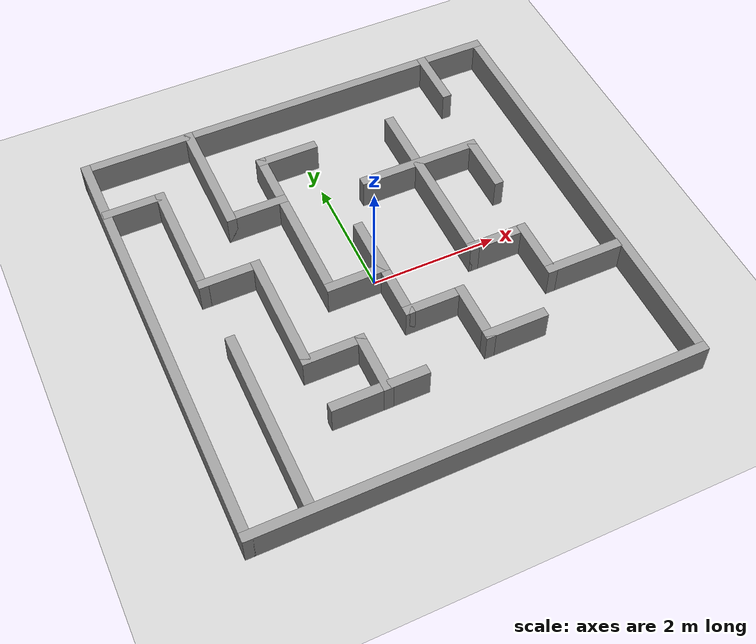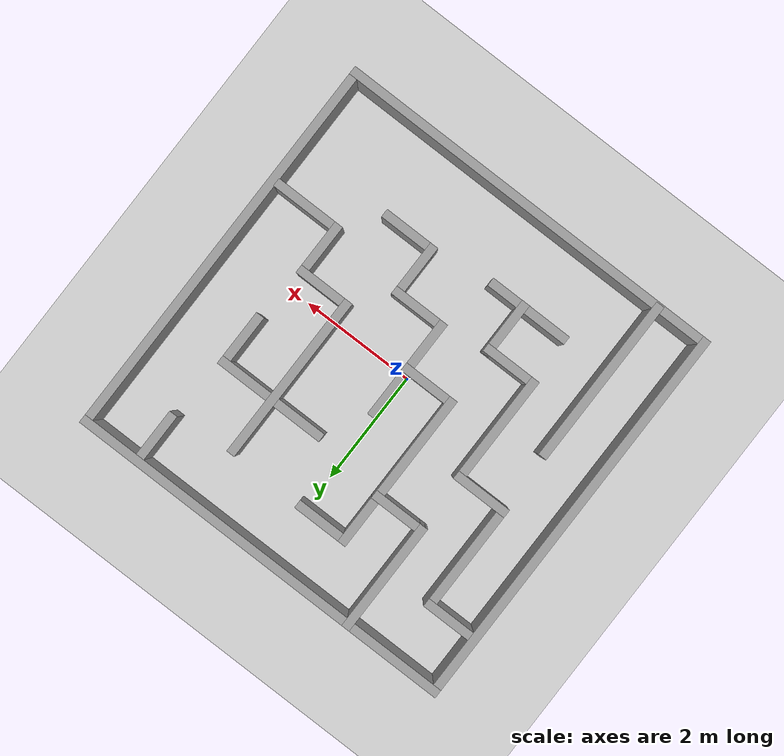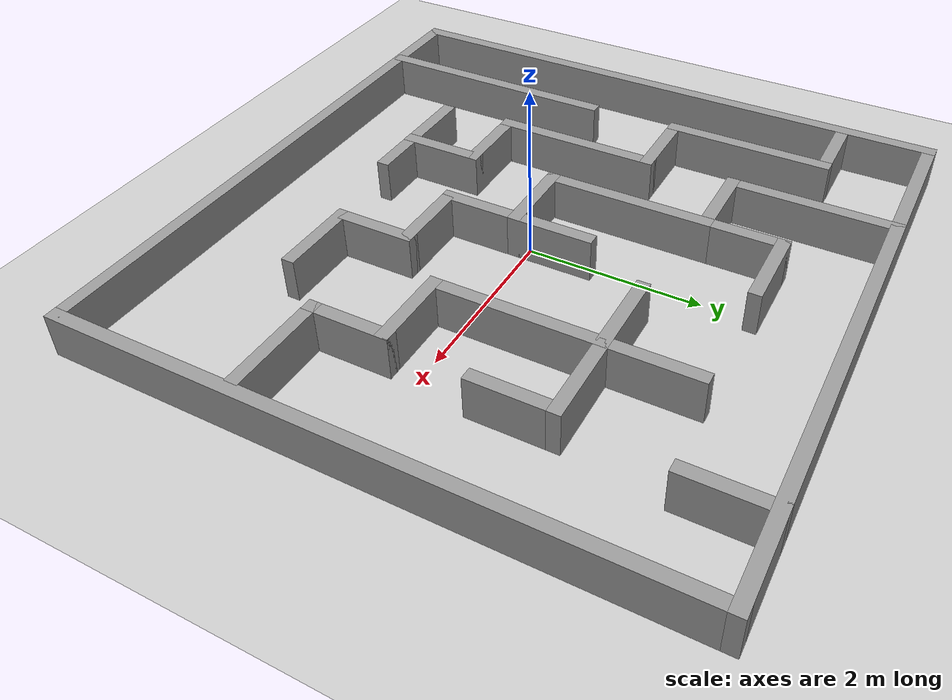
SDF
<sdf version="1.7">
 <world name="default">
  <light name="sun" type="directional">
   <pose>0 0 10 0 -0 0</pose>
   <diffuse>0.8 0.8 0.8 1</diffuse>
   <specular>0.2 0.2 0.2 1</specular>
   <attenuation>
    <range>1000</range>
    <constant>0.9</constant>
    <linear>0.01</linear>
    <quadratic>0.001</quadratic>
   </attenuation>
   <direction>-0.5 0.1 -0.9</direction>
   <spot><inner_angle>0</inner_angle><outer_angle>0</outer_angle><falloff>0</falloff></spot>
  </light>
  <model name="ground_plane">
   <static>1</static>
   <link name="link">
    <collision name="collision">
     <geometry><plane><normal>0 0 1</normal><size>100 100</size></plane></geometry>
     <surface>
      <contact><collide_bitmask>65535</collide_bitmask></contact>
      <friction><ode><mu>100</mu><mu2>50</mu2></ode></friction>
     </surface>
    </collision>
    <visual name="visual">
     <cast_shadows>0</cast_shadows>
     <geometry><plane><normal>0 0 1</normal><size>100 100</size></plane></geometry>
     <material>
      <script><uri>file://media/materials/scripts/gazebo.material</uri><name>Gazebo/Grey</name></script>
     </material>
    </visual>
   </link>
  </model>
  <gravity>0 0 -9.8</gravity>
  <magnetic_field>6e-06 2.3e-05 -4.2e-05</magnetic_field>
  <atmosphere type="adiabatic"/>
  <physics type="ode">
   <max_step_size>0.001</max_step_size>
   <real_time_factor>1</real_time_factor>
   <real_time_update_rate>1000</real_time_update_rate>
  </physics>
  <scene><ambient>0.4 0.4 0.4 1</ambient><background>0.7 0.7 0.7 1</background><shadows>1</shadows></scene>
  <spherical_coordinates>
   <surface_model>EARTH_WGS84</surface_model>
   <latitude_deg>0</latitude_deg>
   <longitude_deg>0</longitude_deg>
   <elevation>0</elevation>
   <heading_deg>0</heading_deg>
  </spherical_coordinates>
  <model name="labyrinth">
   <pose>0.117069 0.145921 0 0 -0 0</pose>
   <link name="Wall_10">
    <collision name="Wall_10_Collision">
     <geometry><box><size>1 0.15 0.5</size></box></geometry>
     <pose>0 0 0.25 0 -0 0</pose>
    </collision>
    <visual name="Wall_10_Visual">
     <pose>0 0 0.25 0 -0 0</pose>
     <geometry><box><size>1 0.15 0.5</size></box></geometry>
     <material>
      <script><uri>file://media/materials/scripts/gazebo.material</uri><name>Gazebo/Grey</name></script>
      <ambient>1 1 1 1</ambient>
     </material>
     <meta><layer>0</layer></meta>
    </visual>
    <pose>-2.12873 0.556014 0 0 -0 0</pose>
   </link>
   <link name="Wall_11">
    <collision name="Wall_11_Collision">
     <geometry><box><size>2 0.15 0.5</size></box></geometry>
     <pose>0 0 0.25 0 -0 0</pose>
    </collision>
    <visual name="Wall_11_Visual">
     <pose>0 0 0.25 0 -0 0</pose>
     <geometry><box><size>2 0.15 0.5</size></box></geometry>
     <material>
      <script><uri>file://media/materials/scripts/gazebo.material</uri><name>Gazebo/Grey</name></script>
      <ambient>1 1 1 1</ambient>
     </material>
     <meta><layer>0</layer></meta>
    </visual>
    <pose>-1.70373 -0.368986 0 0 -0 -1.5708</pose>
   </link>
   <link name="Wall_12">
    <collision name="Wall_12_Collision">
     <geometry><box><size>1 0.15 0.5</size></box></geometry>
     <pose>0 0 0.25 0 -0 0</pose>
    </collision>
    <visual name="Wall_12_Visual">
     <pose>0 0 0.25 0 -0 0</pose>
     <geometry><box><size>1 0.15 0.5</size></box></geometry>
     <material>
      <script><uri>file://media/materials/scripts/gazebo.material</uri><name>Gazebo/Grey</name></script>
      <ambient>1 1 1 1</ambient>
     </material>
     <meta><layer>0</layer></meta>
    </visual>
    <pose>-1.27873 -1.29399 0 0 -0 0</pose>
   </link>
   <link name="Wall_13">
    <collision name="Wall_13_Collision">
     <geometry><box><size>1 0.15 0.5</size></box></geometry>
     <pose>0 0 0.25 0 -0 0</pose>
    </collision>
    <visual name="Wall_13_Visual">
     <pose>0 0 0.25 0 -0 0</pose>
     <geometry><box><size>1 0.15 0.5</size></box></geometry>
     <material>
      <script><uri>file://media/materials/scripts/gazebo.material</uri><name>Gazebo/Grey</name></script>
      <ambient>1 1 1 1</ambient>
     </material>
     <meta><layer>0</layer></meta>
    </visual>
    <pose>-0.853729 -1.71899 0 0 -0 -1.5708</pose>
   </link>
   <link name="Wall_15">
    <collision name="Wall_15_Collision">
     <geometry><box><size>3 0.15 0.5</size></box></geometry>
     <pose>0 0 0.25 0 -0 0</pose>
    </collision>
    <visual name="Wall_15_Visual">
     <pose>0 0 0.25 0 -0 0</pose>
     <geometry><box><size>3 0.15 0.5</size></box></geometry>
     <material>
      <script><uri>file://media/materials/scripts/gazebo.material</uri><name>Gazebo/Grey</name></script>
      <ambient>1 1 1 1</ambient>
     </material>
     <meta><layer>0</layer></meta>
    </visual>
    <pose>-2.52162 -1.97873 0 0 -0 1.5708</pose>
   </link>
   <link name="Wall_17">
    <collision name="Wall_17_Collision">
     <geometry><box><size>2 0.15 0.5</size></box></geometry>
     <pose>0 0 0.25 0 -0 0</pose>
    </collision>
    <visual name="Wall_17_Visual">
     <pose>0 0 0.25 0 -0 0</pose>
     <geometry><box><size>2 0.15 0.5</size></box></geometry>
     <material>
      <script><uri>file://media/materials/scripts/gazebo.material</uri><name>Gazebo/Grey</name></script>
      <ambient>1 1 1 1</ambient>
     </material>
     <meta><layer>0</layer></meta>
    </visual>
    <pose>-1.73077 2.5 0 0 -0 -1.5708</pose>
   </link>
   <link name="Wall_18">
    <collision name="Wall_18_Collision">
     <geometry><box><size>1 0.15 0.5</size></box></geometry>
     <pose>0 0 0.25 0 -0 0</pose>
    </collision>
    <visual name="Wall_18_Visual">
     <pose>0 0 0.25 0 -0 0</pose>
     <geometry><box><size>1 0.15 0.5</size></box></geometry>
     <material>
      <script><uri>file://media/materials/scripts/gazebo.material</uri><name>Gazebo/Grey</name></script>
      <ambient>1 1 1 1</ambient>
     </material>
     <meta><layer>0</layer></meta>
    </visual>
    <pose>-1.30577 1.575 0 0 -0 0</pose>
   </link>
   <link name="Wall_19">
    <collision name="Wall_19_Collision">
     <geometry><box><size>1 0.15 0.5</size></box></geometry>
     <pose>0 0 0.25 0 -0 0</pose>
    </collision>
    <visual name="Wall_19_Visual">
     <pose>0 0 0.25 0 -0 0</pose>
     <geometry><box><size>1 0.15 0.5</size></box></geometry>
     <material>
      <script><uri>file://media/materials/scripts/gazebo.material</uri><name>Gazebo/Grey</name></script>
      <ambient>1 1 1 1</ambient>
     </material>
     <meta><layer>0</layer></meta>
    </visual>
    <pose>-0.880766 2 0 0 -0 1.5708</pose>
   </link>
   <link name="Wall_20">
    <collision name="Wall_20_Collision">
     <geometry><box><size>1 0.15 0.5</size></box></geometry>
     <pose>0 0 0.25 0 -0 0</pose>
    </collision>
    <visual name="Wall_20_Visual">
     <pose>0 0 0.25 0 -0 0</pose>
     <geometry><box><size>1 0.15 0.5</size></box></geometry>
     <material>
      <script><uri>file://media/materials/scripts/gazebo.material</uri><name>Gazebo/Grey</name></script>
      <ambient>1 1 1 1</ambient>
     </material>
     <meta><layer>0</layer></meta>
    </visual>
    <pose>-0.455766 2.425 0 0 -0 0</pose>
   </link>
   <link name="Wall_22">
    <collision name="Wall_22_Collision">
     <geometry><box><size>2 0.15 0.5</size></box></geometry>
     <pose>0 0 0.25 0 -0 0</pose>
    </collision>
    <visual name="Wall_22_Visual">
     <pose>0 0 0.25 0 -0 0</pose>
     <geometry><box><size>2 0.15 0.5</size></box></geometry>
     <material>
      <script><uri>file://media/materials/scripts/gazebo.material</uri><name>Gazebo/Grey</name></script>
      <ambient>1 1 1 1</ambient>
     </material>
     <meta><layer>0</layer></meta>
    </visual>
    <pose>-0.880766 0.65 0 0 -0 -1.5708</pose>
   </link>
   <link name="Wall_23">
    <collision name="Wall_23_Collision">
     <geometry><box><size>1 0.15 0.5</size></box></geometry>
     <pose>0 0 0.25 0 -0 0</pose>
    </collision>
    <visual name="Wall_23_Visual">
     <pose>0 0 0.25 0 -0 0</pose>
     <geometry><box><size>1 0.15 0.5</size></box></geometry>
     <material>
      <script><uri>file://media/materials/scripts/gazebo.material</uri><name>Gazebo/Grey</name></script>
      <ambient>1 1 1 1</ambient>
     </material>
     <meta><layer>0</layer></meta>
    </visual>
    <pose>-0.455766 -0.275 0 0 -0 0</pose>
   </link>
   <link name="Wall_24">
    <collision name="Wall_24_Collision">
     <geometry><box><size>1 0.15 0.5</size></box></geometry>
     <pose>0 0 0.25 0 -0 0</pose>
    </collision>
    <visual name="Wall_24_Visual">
     <pose>0 0 0.25 0 -0 0</pose>
     <geometry><box><size>1 0.15 0.5</size></box></geometry>
     <material>
      <script><uri>file://media/materials/scripts/gazebo.material</uri><name>Gazebo/Grey</name></script>
      <ambient>1 1 1 1</ambient>
     </material>
     <meta><layer>0</layer></meta>
    </visual>
    <pose>-0.030766 0.15 0 0 -0 1.5708</pose>
   </link>
   <link name="Wall_26">
    <collision name="Wall_26_Collision">
     <geometry><box><size>1 0.15 0.5</size></box></geometry>
     <pose>0 0 0.25 0 -0 0</pose>
    </collision>
    <visual name="Wall_26_Visual">
     <pose>0 0 0.25 0 -0 0</pose>
     <geometry><box><size>1 0.15 0.5</size></box></geometry>
     <material>
      <script><uri>file://media/materials/scripts/gazebo.material</uri><name>Gazebo/Grey</name></script>
      <ambient>1 1 1 1</ambient>
     </material>
     <meta><layer>0</layer></meta>
    </visual>
    <pose>-0.030766 -0.7 0 0 -0 -1.5708</pose>
   </link>
   <link name="Wall_29">
    <collision name="Wall_29_Collision">
     <geometry><box><size>1 0.15 0.5</size></box></geometry>
     <pose>0 0 0.25 0 -0 0</pose>
    </collision>
    <visual name="Wall_29_Visual">
     <pose>0 0 0.25 0 -0 0</pose>
     <geometry><box><size>1 0.15 0.5</size></box></geometry>
     <material>
      <script><uri>file://media/materials/scripts/gazebo.material</uri><name>Gazebo/Grey</name></script>
      <ambient>1 1 1 1</ambient>
     </material>
     <meta><layer>0</layer></meta>
    </visual>
    <pose>0.394234 -1.125 0 0 -0 0</pose>
   </link>
   <link name="Wall_3">
    <collision name="Wall_3_Collision">
     <geometry><box><size>7 0.15 0.5</size></box></geometry>
     <pose>0 0 0.25 0 -0 0</pose>
    </collision>
    <visual name="Wall_3_Visual">
     <pose>0 0 0.25 0 -0 0</pose>
     <geometry><box><size>7 0.15 0.5</size></box></geometry>
     <material>
      <script><uri>file://media/materials/scripts/gazebo.material</uri><name>Gazebo/Grey</name></script>
      <ambient>1 1 1 1</ambient>
     </material>
     <meta><layer>0</layer></meta>
    </visual>
    <pose>-0 3.425 0 0 -0 3.14159</pose>
   </link>
   <link name="Wall_30">
    <collision name="Wall_30_Collision">
     <geometry><box><size>1 0.15 0.5</size></box></geometry>
     <pose>0 0 0.25 0 -0 0</pose>
    </collision>
    <visual name="Wall_30_Visual">
     <pose>0 0 0.25 0 -0 0</pose>
     <geometry><box><size>1 0.15 0.5</size></box></geometry>
     <material>
      <script><uri>file://media/materials/scripts/gazebo.material</uri><name>Gazebo/Grey</name></script>
      <ambient>1 1 1 1</ambient>
     </material>
     <meta><layer>0</layer></meta>
    </visual>
    <pose>0.819234 -1.55 0 0 -0 -1.5708</pose>
   </link>
   <link name="Wall_32">
    <collision name="Wall_32_Collision">
     <geometry><box><size>1 0.15 0.5</size></box></geometry>
     <pose>0 0 0.25 0 -0 0</pose>
    </collision>
    <visual name="Wall_32_Visual">
     <pose>0 0 0.25 0 -0 0</pose>
     <geometry><box><size>1 0.15 0.5</size></box></geometry>
     <material>
      <script><uri>file://media/materials/scripts/gazebo.material</uri><name>Gazebo/Grey</name></script>
      <ambient>1 1 1 1</ambient>
     </material>
     <meta><layer>0</layer></meta>
    </visual>
    <pose>2.42122 3 0 0 -0 -1.5708</pose>
   </link>
   <link name="Wall_38">
    <collision name="Wall_38_Collision">
     <geometry><box><size>3 0.15 0.5</size></box></geometry>
     <pose>0 0 0.25 0 -0 0</pose>
    </collision>
    <visual name="Wall_38_Visual">
     <pose>0 0 0.25 0 -0 0</pose>
     <geometry><box><size>3 0.15 0.5</size></box></geometry>
     <material>
      <script><uri>file://media/materials/scripts/gazebo.material</uri><name>Gazebo/Grey</name></script>
      <ambient>1 1 1 1</ambient>
     </material>
     <meta><layer>0</layer></meta>
    </visual>
    <pose>1.3414 0.950596 0 0 -0 -1.5708</pose>
   </link>
   <link name="Wall_39">
    <collision name="Wall_39_Collision">
     <geometry><box><size>1 0.15 0.5</size></box></geometry>
     <pose>0 0 0.25 0 -0 0</pose>
    </collision>
    <visual name="Wall_39_Visual">
     <pose>0 0 0.25 0 -0 0</pose>
     <geometry><box><size>1 0.15 0.5</size></box></geometry>
     <material>
      <script><uri>file://media/materials/scripts/gazebo.material</uri><name>Gazebo/Grey</name></script>
      <ambient>1 1 1 1</ambient>
     </material>
     <meta><layer>0</layer></meta>
    </visual>
    <pose>1.7664 -0.474404 0 0 -0 0</pose>
   </link>
   <link name="Wall_4">
    <collision name="Wall_4_Collision">
     <geometry><box><size>7 0.15 0.5</size></box></geometry>
     <pose>0 0 0.25 0 -0 0</pose>
    </collision>
    <visual name="Wall_4_Visual">
     <pose>0 0 0.25 0 -0 0</pose>
     <geometry><box><size>7 0.15 0.5</size></box></geometry>
     <material>
      <script><uri>file://media/materials/scripts/gazebo.material</uri><name>Gazebo/Grey</name></script>
      <ambient>1 1 1 1</ambient>
     </material>
     <meta><layer>0</layer></meta>
    </visual>
    <pose>-3.425 0 0 0 -0 -1.5708</pose>
   </link>
   <link name="Wall_40">
    <collision name="Wall_40_Collision">
     <geometry><box><size>1 0.15 0.5</size></box></geometry>
     <pose>0 0 0.25 0 -0 0</pose>
    </collision>
    <visual name="Wall_40_Visual">
     <pose>0 0 0.25 0 -0 0</pose>
     <geometry><box><size>1 0.15 0.5</size></box></geometry>
     <material>
      <script><uri>file://media/materials/scripts/gazebo.material</uri><name>Gazebo/Grey</name></script>
      <ambient>1 1 1 1</ambient>
     </material>
     <meta><layer>0</layer></meta>
    </visual>
    <pose>2.1914 -0.899404 0 0 -0 -1.5708</pose>
   </link>
   <link name="Wall_41">
    <collision name="Wall_41_Collision">
     <geometry><box><size>1.25 0.15 0.5</size></box></geometry>
     <pose>0 0 0.25 0 -0 0</pose>
    </collision>
    <visual name="Wall_41_Visual">
     <pose>0 0 0.25 0 -0 0</pose>
     <geometry><box><size>1.25 0.15 0.5</size></box></geometry>
     <material>
      <script><uri>file://media/materials/scripts/gazebo.material</uri><name>Gazebo/Grey</name></script>
      <ambient>1 1 1 1</ambient>
     </material>
     <meta><layer>0</layer></meta>
    </visual>
    <pose>2.7414 -1.3244 0 0 -0 0</pose>
   </link>
   <link name="Wall_43">
    <collision name="Wall_43_Collision">
     <geometry><box><size>2 0.15 0.5</size></box></geometry>
     <pose>0 0 0.25 0 -0 0</pose>
    </collision>
    <visual name="Wall_43_Visual">
     <pose>0 0 0.25 0 -0 0</pose>
     <geometry><box><size>2 0.15 0.5</size></box></geometry>
     <material>
      <script><uri>file://media/materials/scripts/gazebo.material</uri><name>Gazebo/Grey</name></script>
      <ambient>1 1 1 1</ambient>
     </material>
     <meta><layer>0</layer></meta>
    </visual>
    <pose>1.36909 1.38703 0 0 -0 0</pose>
   </link>
   <link name="Wall_44">
    <collision name="Wall_44_Collision">
     <geometry><box><size>1 0.15 0.5</size></box></geometry>
     <pose>0 0 0.25 0 -0 0</pose>
    </collision>
    <visual name="Wall_44_Visual">
     <pose>0 0 0.25 0 -0 0</pose>
     <geometry><box><size>1 0.15 0.5</size></box></geometry>
     <material>
      <script><uri>file://media/materials/scripts/gazebo.material</uri><name>Gazebo/Grey</name></script>
      <ambient>1 1 1 1</ambient>
     </material>
     <meta><layer>0</layer></meta>
    </visual>
    <pose>2.29408 0.962028 0 0 -0 -1.5708</pose>
   </link>
   <link name="Wall_46">
    <collision name="Wall_46_Collision">
     <geometry><box><size>1.5 0.15 0.5</size></box></geometry>
     <pose>0 0 0.25 0 -0 0</pose>
    </collision>
    <visual name="Wall_46_Visual">
     <pose>0 0 0.25 0 -0 0</pose>
     <geometry><box><size>1.5 0.15 0.5</size></box></geometry>
     <material>
      <script><uri>file://media/materials/scripts/gazebo.material</uri><name>Gazebo/Grey</name></script>
      <ambient>1 1 1 1</ambient>
     </material>
     <meta><layer>0</layer></meta>
    </visual>
    <pose>-0.964514 -2.1414 0 0 -0 0</pose>
   </link>
   <link name="Wall_49">
    <collision name="Wall_49_Collision">
     <geometry><box><size>1 0.15 0.5</size></box></geometry>
     <pose>0 0 0.25 0 -0 0</pose>
    </collision>
    <visual name="Wall_49_Visual">
     <pose>0 0 0.25 0 -0 0</pose>
     <geometry><box><size>1 0.15 0.5</size></box></geometry>
     <material>
      <script><uri>file://media/materials/scripts/gazebo.material</uri><name>Gazebo/Grey</name></script>
      <ambient>1 1 1 1</ambient>
     </material>
     <meta><layer>0</layer></meta>
    </visual>
    <pose>1.24423 -1.975 0 0 -0 0</pose>
   </link>
   <link name="Wall_5">
    <collision name="Wall_5_Collision">
     <geometry><box><size>7 0.15 0.5</size></box></geometry>
     <pose>0 0 0.25 0 -0 0</pose>
    </collision>
    <visual name="Wall_5_Visual">
     <pose>0 0 0.25 0 -0 0</pose>
     <geometry><box><size>7 0.15 0.5</size></box></geometry>
     <material>
      <script><uri>file://media/materials/scripts/gazebo.material</uri><name>Gazebo/Grey</name></script>
      <ambient>1 1 1 1</ambient>
     </material>
     <meta><layer>0</layer></meta>
    </visual>
    <pose>-0 -3.425 0 0 -0 0</pose>
   </link>
   <link name="Wall_6">
    <collision name="Wall_6_Collision">
     <geometry><box><size>7 0.15 0.5</size></box></geometry>
     <pose>0 0 0.25 0 -0 0</pose>
    </collision>
    <visual name="Wall_6_Visual">
     <pose>0 0 0.25 0 -0 0</pose>
     <geometry><box><size>7 0.15 0.5</size></box></geometry>
     <material>
      <script><uri>file://media/materials/scripts/gazebo.material</uri><name>Gazebo/Grey</name></script>
      <ambient>1 1 1 1</ambient>
     </material>
     <meta><layer>0</layer></meta>
    </visual>
    <pose>3.425 0 0 0 -0 1.5708</pose>
   </link>
   <link name="Wall_8">
    <collision name="Wall_8_Collision">
     <geometry><box><size>1 0.15 0.5</size></box></geometry>
     <pose>0 0 0.25 0 -0 0</pose>
    </collision>
    <visual name="Wall_8_Visual">
     <pose>0 0 0.25 0 -0 0</pose>
     <geometry><box><size>1 0.15 0.5</size></box></geometry>
     <material>
      <script><uri>file://media/materials/scripts/gazebo.material</uri><name>Gazebo/Grey</name></script>
      <ambient>1 1 1 1</ambient>
     </material>
     <meta><layer>0</layer></meta>
    </visual>
    <pose>-2.97873 2.40601 0 0 -0 0</pose>
   </link>
   <link name="Wall_9">
    <collision name="Wall_9_Collision">
     <geometry><box><size>2 0.15 0.5</size></box></geometry>
     <pose>0 0 0.25 0 -0 0</pose>
    </collision>
    <visual name="Wall_9_Visual">
     <pose>0 0 0.25 0 -0 0</pose>
     <geometry><box><size>2 0.15 0.5</size></box></geometry>
     <material>
      <script><uri>file://media/materials/scripts/gazebo.material</uri><name>Gazebo/Grey</name></script>
      <ambient>1 1 1 1</ambient>
     </material>
     <meta><layer>0</layer></meta>
    </visual>
    <pose>-2.55373 1.48101 0 0 -0 -1.5708</pose>
   </link>
   <static>1</static>
  </model>
 </world>
</sdf>
